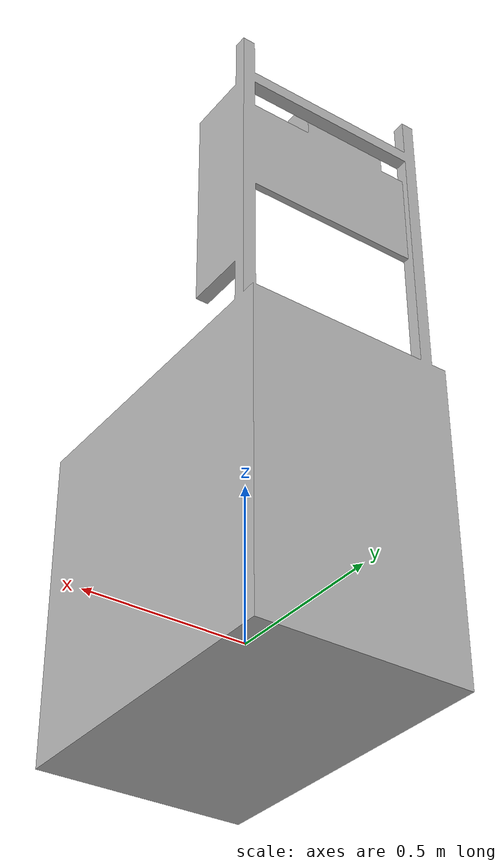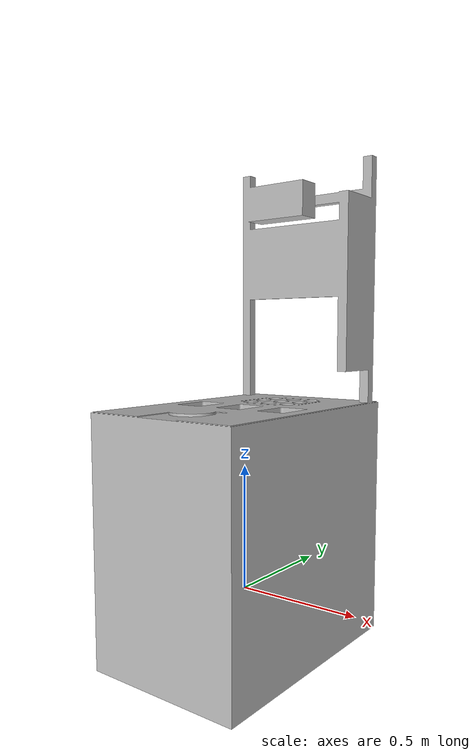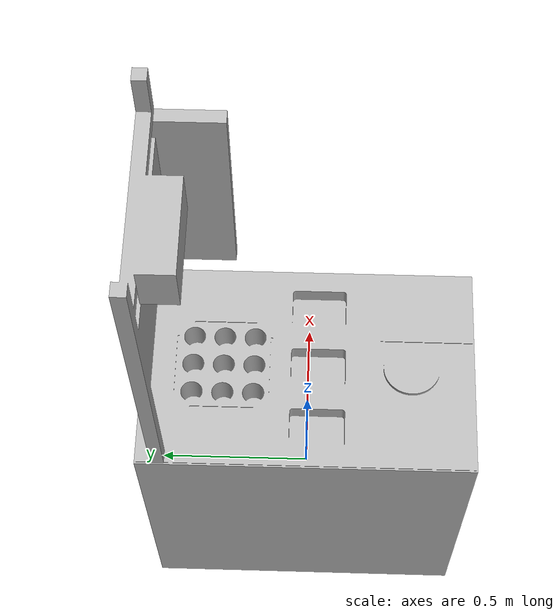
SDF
<?xml version="1.0"?>
<sdf version="1.7">
  <model name="basket_table">
    <static>true</static>
    <link name="link">
      <pose>0 0 0.74 0 0 0</pose>

      <collision name="surface">
        <pose>0 0 -0.015 0 0 0</pose>
        <geometry>
          <mesh>
            <uri>model://BasketTable/meshes/BasketTable.stl</uri>
            <scale>0.001 0.001 0.001 </scale>
          </mesh>
        </geometry>
      </collision>

      <visual name="visual">
        <geometry>
          <mesh>
            <uri>model://BasketTable/meshes/BasketTable.stl</uri>
            <scale>0.001 0.001 0.001 </scale>
          </mesh>
        </geometry>
        <light type="directional" name="some_light">
          <diffuse>0.7 0.7 0.7 0</diffuse>
          <specular>1 1 1 0</specular>
          <direction>-1 -1 -1</direction>
        </light>
      </visual>
    </link>
  </model>
</sdf>
